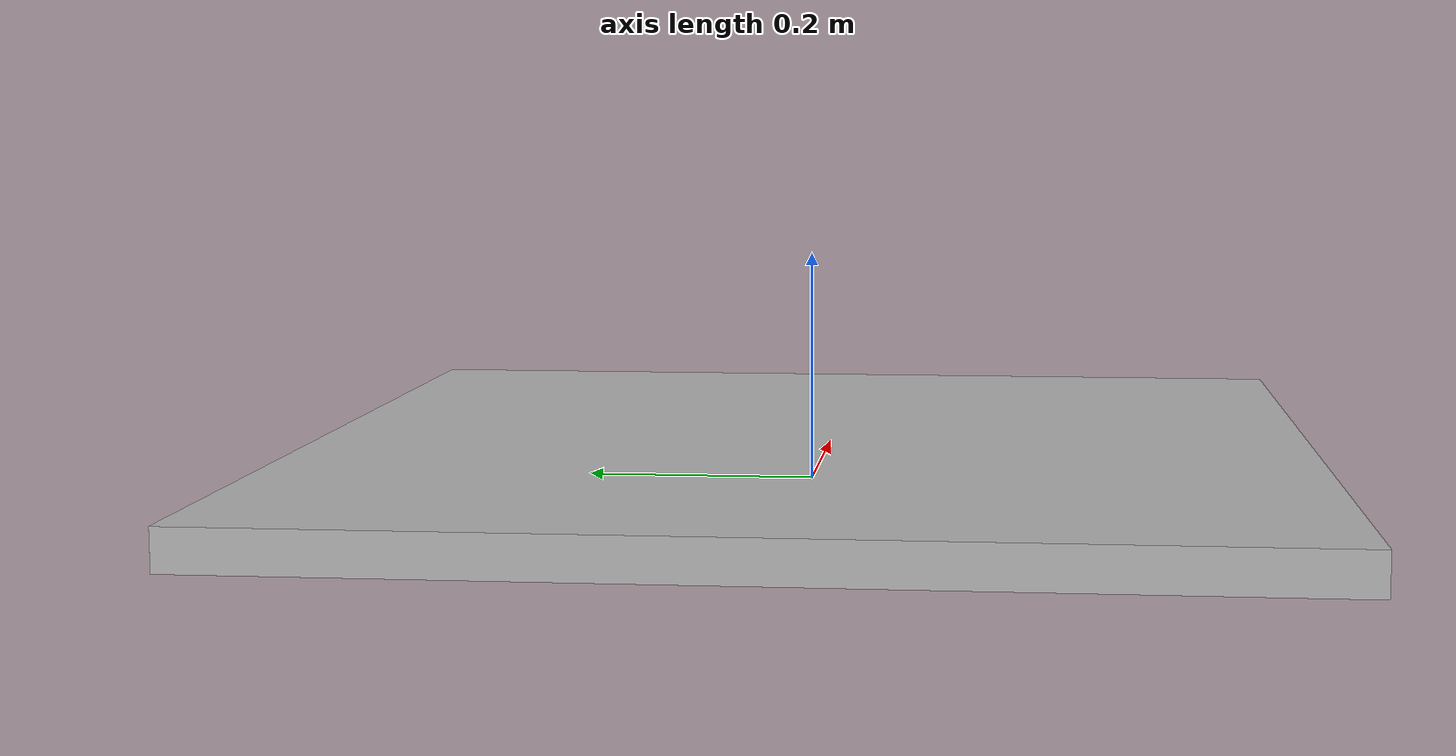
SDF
<?xml version="1.0" ?>
<sdf version="1.6">
  <model name="aruco_1">
    <static>true</static>
    <link name="link">
      <collision name="collision">
        <geometry>
          <mesh>
            <scale>3.5 3.5 3.5</scale>
            <uri>model://aruco_1/meshes/marker.stl</uri>
          </mesh>
           <surface>
            <friction>
              <ode>
                <mu>1.2</mu>
                <mu2>1.2</mu2>
              </ode>
            </friction>
          </surface>
        </geometry>
      </collision>
      <visual name="visual">
        <geometry>
          <mesh>
            <scale>3.5 3.5 3.5</scale>
            <uri>model://aruco_1/meshes/marker.dae</uri>
          </mesh>
        </geometry>
      </visual>
    </link>
  </model>
</sdf>
